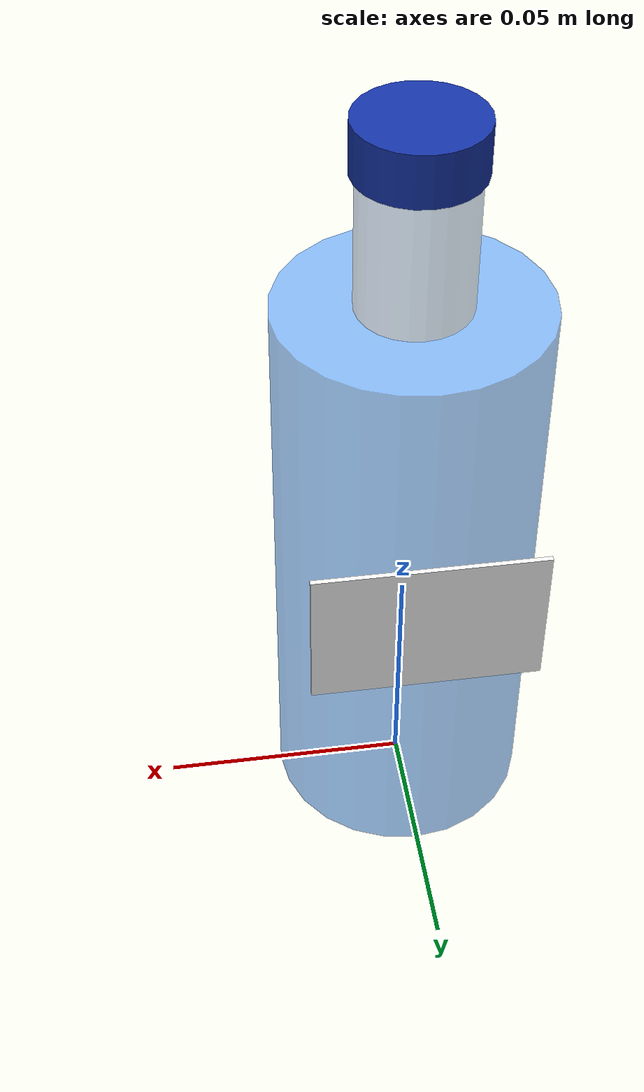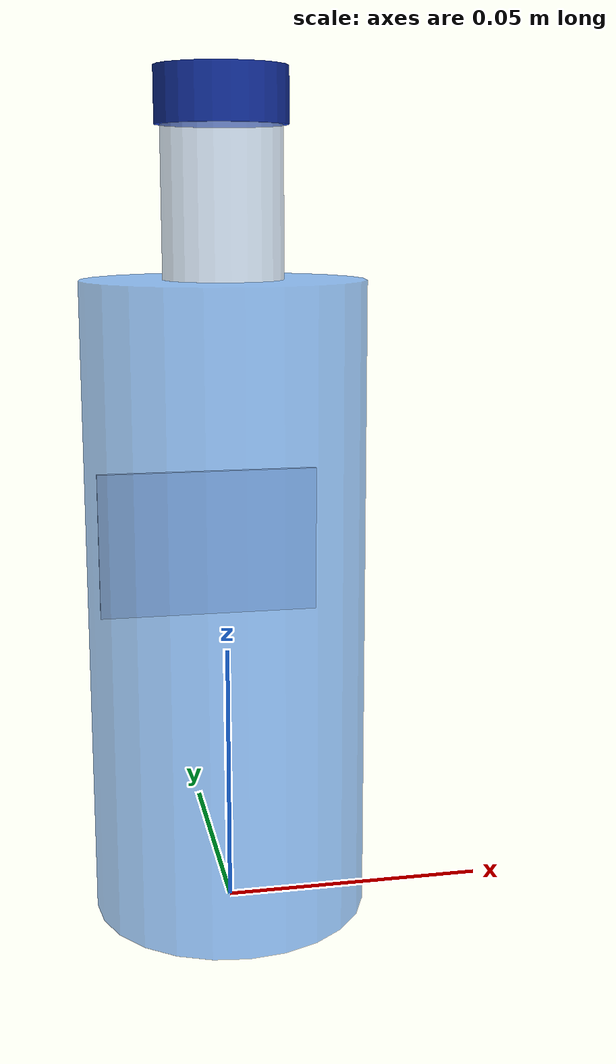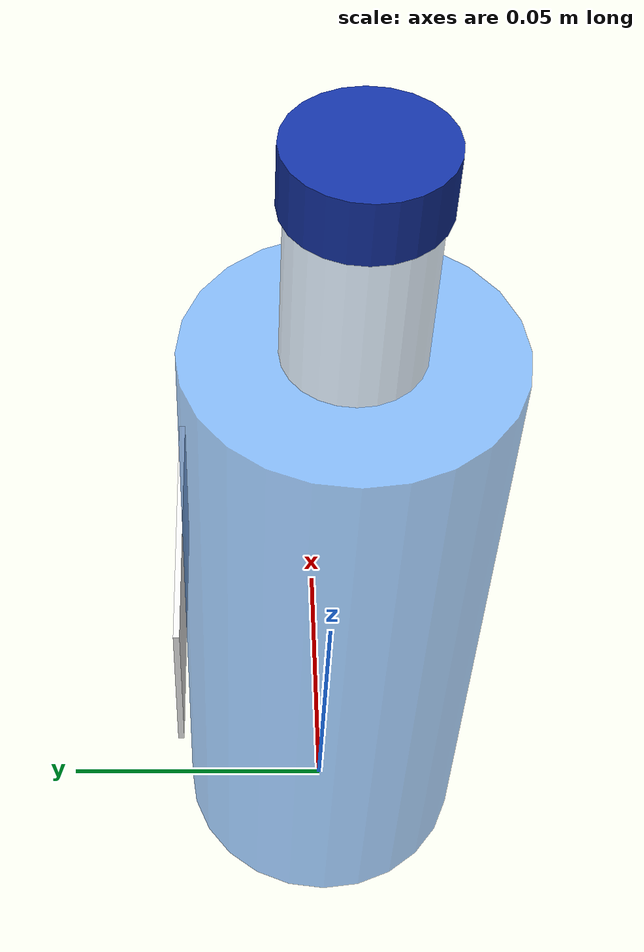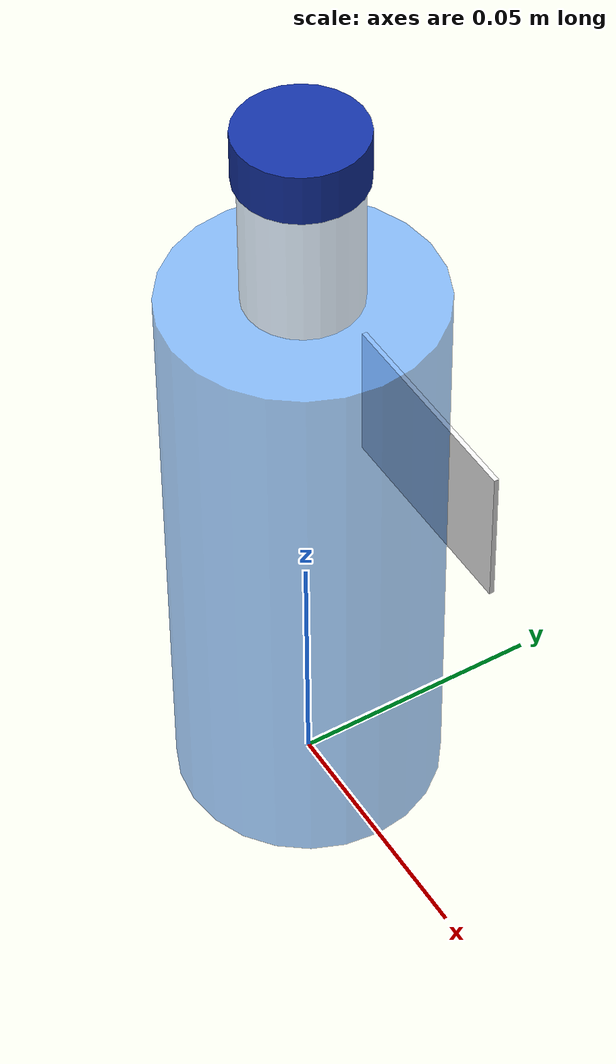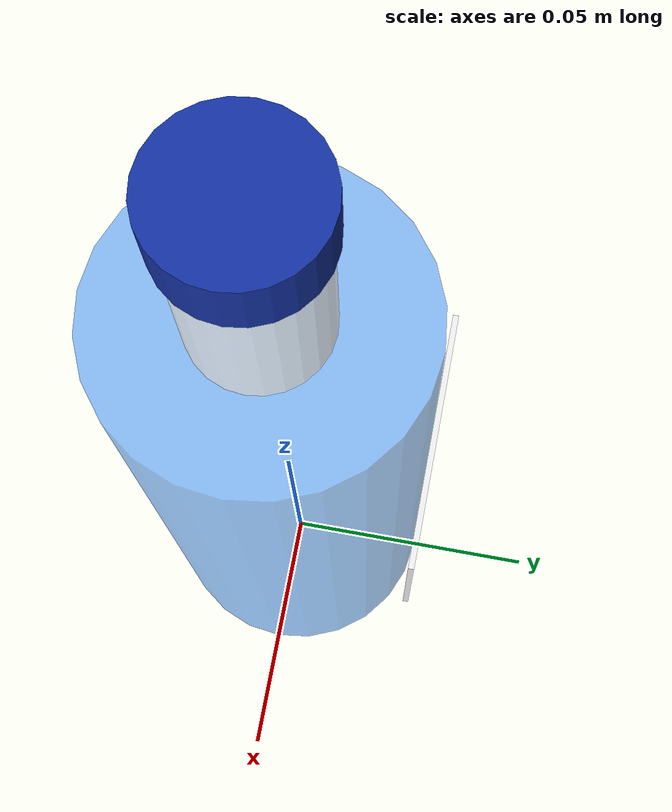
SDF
<?xml version="1.0"?>
<sdf version="1.6">
  <model name="trash_object_red">
    <static>false</static>
    <allow_auto_disable>false</allow_auto_disable>

    <link name="plastic_bottle_link">
      <pose>0 0 0 0 0 0</pose>

      <inertial>
        <mass>0.03</mass>
        <inertia>
          <ixx>0.00003</ixx>
          <iyy>0.00003</iyy>
          <izz>0.00001</izz>
          <ixy>0</ixy>
          <ixz>0</ixz>
          <iyz>0</iyz>
        </inertia>
      </inertial>

      <collision name="body_collision">
        <pose>0 0 0.060 0 0 0</pose>
        <geometry>
          <cylinder>
            <radius>0.026</radius>
            <length>0.12</length>
          </cylinder>
        </geometry>
      </collision>

      <collision name="neck_collision">
        <pose>0 0 0.132 0 0 0</pose>
        <geometry>
          <cylinder>
            <radius>0.011</radius>
            <length>0.030</length>
          </cylinder>
        </geometry>
      </collision>

      <collision name="cap_collision">
        <pose>0 0 0.152 0 0 0</pose>
        <geometry>
          <cylinder>
            <radius>0.012</radius>
            <length>0.010</length>
          </cylinder>
        </geometry>
      </collision>

      <visual name="body_visual">
        <pose>0 0 0.060 0 0 0</pose>
        <geometry>
          <cylinder>
            <radius>0.026</radius>
            <length>0.12</length>
          </cylinder>
        </geometry>
        <material>
          <ambient>0.15 0.45 0.95 0.55</ambient>
          <diffuse>0.20 0.55 1.00 0.55</diffuse>
          <specular>0.30 0.30 0.30 0.30</specular>
        </material>
      </visual>

      <visual name="label_visual">
        <pose>0 0.0265 0.065 1.57079632679 0 0</pose>
        <geometry>
          <box>
            <size>0.045 0.030 0.001</size>
          </box>
        </geometry>
        <material>
          <ambient>0.95 0.95 0.95 1.0</ambient>
          <diffuse>0.95 0.95 0.95 1.0</diffuse>
        </material>
      </visual>

      <visual name="neck_visual">
        <pose>0 0 0.132 0 0 0</pose>
        <geometry>
          <cylinder>
            <radius>0.011</radius>
            <length>0.030</length>
          </cylinder>
        </geometry>
        <material>
          <ambient>0.75 0.85 1.00 0.60</ambient>
          <diffuse>0.75 0.85 1.00 0.60</diffuse>
        </material>
      </visual>

      <visual name="cap_visual">
        <pose>0 0 0.152 0 0 0</pose>
        <geometry>
          <cylinder>
            <radius>0.012</radius>
            <length>0.010</length>
          </cylinder>
        </geometry>
        <material>
          <ambient>0.05 0.15 0.55 1.0</ambient>
          <diffuse>0.08 0.20 0.65 1.0</diffuse>
        </material>
      </visual>
    </link>
  </model>
</sdf>
